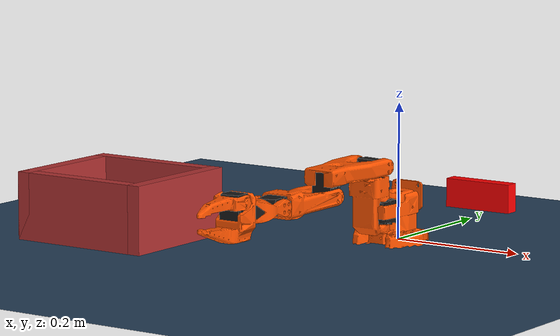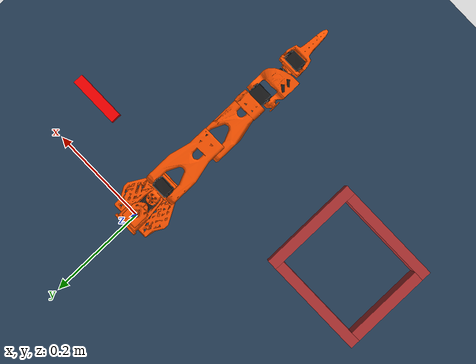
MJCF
<mujoco model="so_arm100_open_box_scene">

  <compiler angle="radian" meshdir="assets/" autolimits="true"  />

  <option cone="elliptic" impratio="10"/>

  <asset>
    <material name="orange" rgba="1.0 0.331 0.0 1.0" specular="0.1" shininess="0.1"/>
    <material name="black" rgba="0.1 0.1 0.1 1.0" specular="0.1" shininess="0.1"/>

    <mesh name="Base" file="Base.stl"/>
    <mesh name="Base_Motor" file="Base_Motor.stl"/>
    <mesh name="Rotation_Pitch" file="Rotation_Pitch.stl"/>
    <mesh name="Rotation_Pitch_Motor" file="Rotation_Pitch_Motor.stl"/>
    <mesh name="Upper_Arm" file="Upper_Arm.stl"/>
    <mesh name="Upper_Arm_Motor" file="Upper_Arm_Motor.stl"/>
    <mesh name="Lower_Arm" file="Lower_Arm.stl"/>
    <mesh name="Lower_Arm_Motor" file="Lower_Arm_Motor.stl"/>
    <mesh name="Wrist_Pitch_Roll" file="Wrist_Pitch_Roll.stl"/>
    <mesh name="Wrist_Pitch_Roll_Motor" file="Wrist_Pitch_Roll_Motor.stl"/>
    <mesh name="Fixed_Jaw" file="Fixed_Jaw.stl"/>
    <mesh name="Fixed_Jaw_Motor" file="Fixed_Jaw_Motor.stl"/>
    <mesh name="Fixed_Jaw_Collision_1" file="Fixed_Jaw_Collision_1.stl"/>
    <mesh name="Fixed_Jaw_Collision_2" file="Fixed_Jaw_Collision_2.stl"/>
    <mesh name="Moving_Jaw" file="Moving_Jaw.stl"/>
    <mesh name="Moving_Jaw_Collision_1" file="Moving_Jaw_Collision_1.stl"/>
    <mesh name="Moving_Jaw_Collision_2" file="Moving_Jaw_Collision_2.stl"/>
    <mesh name="Moving_Jaw_Collision_3" file="Moving_Jaw_Collision_3.stl"/>
  </asset>
<!--position kp="50" damping="1" forcerange="-35 35" ctrlrange="-3.14158 3.14158"/-->
  <default>
    <default class="so_arm100">
      <!--joint frictionloss="0.1" armature="0.1" autolimits="true" range="-3.14158 3.14158"/-->
      <joint frictionloss="2000" armature="0.1" />
      <position kp="50" forcerange="-35 35" ctrlrange="-3.14158 3.14158" />
      <default class="Rotation">
        <joint axis="0 1 0" range="-2.2 2.2" />
      </default>
      <default class="Pitch">
        <joint axis="1 0 0" range="-3.14158 0.2" />
      </default>
      <default class="Elbow">
        <joint axis="1 0 0" range="0 3.14158" />
      </default>
      <default class="Wrist_Pitch">
        <joint axis="1 0 0" range="-2.0 1.8" />
      </default>
      <default class="Wrist_Roll">
        <joint axis="0 1 0" range="-3.14158 3.14158"/>
      </default>
      <default class="Jaw">
        <joint axis="0 0 1" range="-0.2 2.0" />
      </default>
      <default class="visual">
        <geom type="mesh" contype="0" conaffinity="0" density="0" group="2" material="orange"/>
        <default class="motor_visual">
          <geom material="black"/>
        </default>
      </default>
      <default class="collision">
        <geom group="3" type="mesh"/>
        <default class="finger_collision">
          <geom type="box" solimp="2 1 0.01" solref="0.01 1" friction="1 0.005 0.0001"/>
        </default>
      </default>
    </default>
  </default>

  <worldbody>
    <body name="Base" childclass="so_arm100">
      <geom type="mesh" mesh="Base" class="visual"/>
      <geom type="mesh" mesh="Base_Motor" class="motor_visual"/>
      <geom type="mesh" mesh="Base" class="collision"/>
      <body name="Rotation_Pitch" pos="0 -0.0452 0.0165" quat="0.707105 0.707108 0 0">
        <inertial pos="-9.07886e-05 0.0590972 0.031089" quat="0.363978 0.441169 -0.623108 0.533504" mass="0.119226"
          diaginertia="5.94278e-05 5.89975e-05 3.13712e-05"/>
        <joint name="Rotation" class="Rotation"/>
        <geom type="mesh" mesh="Rotation_Pitch" class="visual"/>
        <geom type="mesh" mesh="Rotation_Pitch_Motor" class="motor_visual"/>
        <geom type="mesh" mesh="Rotation_Pitch" class="collision"/>
        <body name="Upper_Arm" pos="0 0.1025 0.0306" euler="1.57079 0 0">
          <inertial pos="-1.72052e-05 0.0701802 0.00310545" quat="0.50104 0.498994 -0.493562 0.50632" mass="0.162409"
            diaginertia="0.000213312 0.000167164 7.01522e-05"/>
          <joint name="Pitch" class="Pitch"/>
          <geom type="mesh" mesh="Upper_Arm" class="visual"/>
          <geom type="mesh" mesh="Upper_Arm_Motor" class="motor_visual"/>
          <geom type="mesh" mesh="Upper_Arm" class="collision"/>
          <body name="Lower_Arm" pos="0 0.11257 0.028" euler="-1.57079 0 0">
            <inertial pos="-0.00339604 0.00137796 0.0768007" quat="0.701995 0.0787996 0.0645626 0.704859"
              mass="0.147968" diaginertia="0.000138803 0.000107748 4.84242e-05"/>
            <joint name="Elbow" class="Elbow"/>
            <geom type="mesh" mesh="Lower_Arm" class="visual"/>
            <geom type="mesh" mesh="Lower_Arm_Motor" class="motor_visual"/>
            <geom type="mesh" mesh="Lower_Arm" class="collision"/>
            <body name="Wrist_Pitch_Roll" pos="0 0.0052 0.1349" euler="-1.57079 0 0">
              <inertial pos="-0.00852653 -0.0352279 -2.34622e-05" quat="-0.0522806 0.705235 0.0549524 0.704905"
                mass="0.0661321" diaginertia="3.45403e-05 2.39041e-05 1.94704e-05"/>
              <joint name="Wrist_Pitch" class="Wrist_Pitch"/>
              <geom type="mesh" mesh="Wrist_Pitch_Roll" class="visual"/>
              <geom type="mesh" mesh="Wrist_Pitch_Roll_Motor" class="motor_visual"/>
              <geom type="mesh" mesh="Wrist_Pitch_Roll" class="collision"/>
              <body name="Fixed_Jaw" pos="0 -0.0601 0" euler="0 1.57079 0">
                <inertial pos="0.00552377 -0.0280167 0.000483583" quat="0.41836 0.620891 -0.350644 0.562599"
                  mass="0.0929859" diaginertia="5.03136e-05 4.64098e-05 2.72961e-05"/>
                <joint name="Wrist_Roll" class="Wrist_Roll"/>
                <geom type="mesh" mesh="Fixed_Jaw" class="visual"/>
                <geom type="mesh" mesh="Fixed_Jaw_Motor" class="motor_visual"/>
                <geom type="mesh" mesh="Fixed_Jaw_Collision_1" class="collision"/>
                <geom type="mesh" mesh="Fixed_Jaw_Collision_2" class="collision"/>
                <geom class="finger_collision" name="fixed_jaw_pad_1" size="0.001 0.005 0.004" pos="0.0089 -0.1014 0"/>
                <geom class="finger_collision" name="fixed_jaw_pad_2" size="0.001 0.005 0.006" pos="0.0109 -0.0914 0"/>
                <geom class="finger_collision" name="fixed_jaw_pad_3" size="0.001 0.01 0.007" pos="0.0126 -0.0768 0"/>
                <geom class="finger_collision" name="fixed_jaw_pad_4" size="0.001 0.01 0.008" pos="0.0143 -0.0572 0"/>
                <body name="Moving_Jaw" pos="-0.0202 -0.0244 0" quat="1.34924e-11 -3.67321e-06 1 -3.67321e-06">
                  <inertial pos="-0.00161745 -0.0303473 0.000449646" quat="0.696562 0.716737 -0.0239844 -0.0227026"
                    mass="0.0202444" diaginertia="1.11265e-05 8.99651e-06 2.99548e-06"/>
                  <joint name="Jaw" class="Jaw"/>
                  <geom type="mesh" mesh="Moving_Jaw" class="visual"/>
                  <geom type="mesh" mesh="Moving_Jaw_Collision_1" class="collision"/>
                  <geom type="mesh" mesh="Moving_Jaw_Collision_2" class="collision"/>
                  <geom type="mesh" mesh="Moving_Jaw_Collision_3" class="collision"/>
                  <geom class="finger_collision" name="moving_jaw_pad_1" size="0.001 0.005 0.004" pos="-0.0113 -0.077 0"/>
                  <geom class="finger_collision" name="moving_jaw_pad_2" size="0.001 0.005 0.006" pos="-0.0093 -0.067 0"/>
                  <geom class="finger_collision" name="moving_jaw_pad_3" size="0.001 0.01 0.006" pos="-0.0073 -0.055 0"/>
                  <geom class="finger_collision" name="moving_jaw_pad_4" size="0.001 0.01 0.008" pos="-0.0073 -0.035 0"/>
                </body>
              </body>
            </body>
          </body>
        </body>
      </body>
    </body>
  </worldbody>

  <actuator>
    <position class="Rotation" name="Rotation" joint="Rotation"/>
    <position class="Pitch" name="Pitch" joint="Pitch"/>
    <position class="Elbow" name="Elbow" joint="Elbow"/>
    <position class="Wrist_Pitch" name="Wrist_Pitch" joint="Wrist_Pitch"/>
    <position class="Wrist_Roll" name="Wrist_Roll" joint="Wrist_Roll"/>
    <position class="Jaw" name="Jaw" joint="Jaw"/>
  </actuator>

  <contact>
    <exclude body1="Base" body2="Rotation_Pitch"/>
  </contact>

    <statistic center="0 -0.2 0.1" extent="0.4"/>

    <visual>
        <headlight diffuse="0.6 0.6 0.6" ambient="0.3 0.3 0.3" specular="0 0 0"/>
        <rgba haze="0.15 0.25 0.35 1"/>
        <global azimuth="140" elevation="-30"/>
    </visual>

    <asset>
        <texture type="skybox" builtin="gradient" rgb1="0.3 0.5 0.7" rgb2="0 0 0" width="512" height="3072"/>
        <texture type="2d" name="groundplane" builtin="checker" mark="edge" rgb1="0.2 0.3 0.4" rgb2="0.1 0.2 0.3"
            markrgb="0.8 0.8 0.8" width="300" height="300"/>
        <material name="groundplane" texture="groundplane" texuniform="true" texrepeat="5 5" reflectance="0.2"/>
        <material name="box_material" rgba="0.7 0.2 0.2 1"/>
    </asset>

    <worldbody>
        <!-- Ground plane -->
        <light pos="0 0 1.5" dir="0 0 -1" directional="true"/>
        <geom name="floor" size="2 2 0.05" type="plane" material="groundplane"/>

        <body name="open_box" pos="0.4 0 0.1">
            <geom name="box_front" type="box" size="0.1 0.01 0.05" pos="-0.75 -0.13 -0.05" material="box_material"/>
            <geom name="box_back" type="box" size="0.1 0.01 0.05" pos="-0.75 -0.31 -0.05" material="box_material"/>
            <geom name="box_left" type="box" size="0.01 0.1 0.05" pos="-0.64 -0.22 -0.05" material="box_material"/>
            <geom name="box_right" type="box" size="0.01 0.1 0.05" pos="-0.84 -0.22 -0.05" material="box_material"/>
            <!--geom name="box_bottom" type="box" size="0.2 0.2 0.01" pos="-0.5 -0.5 -0.13" material="box_material"/-->
        </body>

        <!-- Box -->
        <body name="box" pos="0.2 -0.1 0.1">
            <geom name="box_geom" type="box" size="0.05 0.01 0.02" rgba="1 0 0 1" density="100"/>
            <joint name="box_joint" type= "free"/>
        </body>

    </worldbody>

    <!-- SimulaciÃ³n -->
    <option timestep="0.002" gravity="0 0 -9.81" iterations="50" integrator="RK4"/>

    <!-- Keyframes -->
    <keyframe>
        <key name="home"
             qpos="0 0 0.1 1 0 0 0 0 -1.57079 1.57079 1.57079 -1.57079 0"
             ctrl="0 -1.57079 1.57079 1.57079 -1.57079 0"/>
    </keyframe>

</mujoco>
